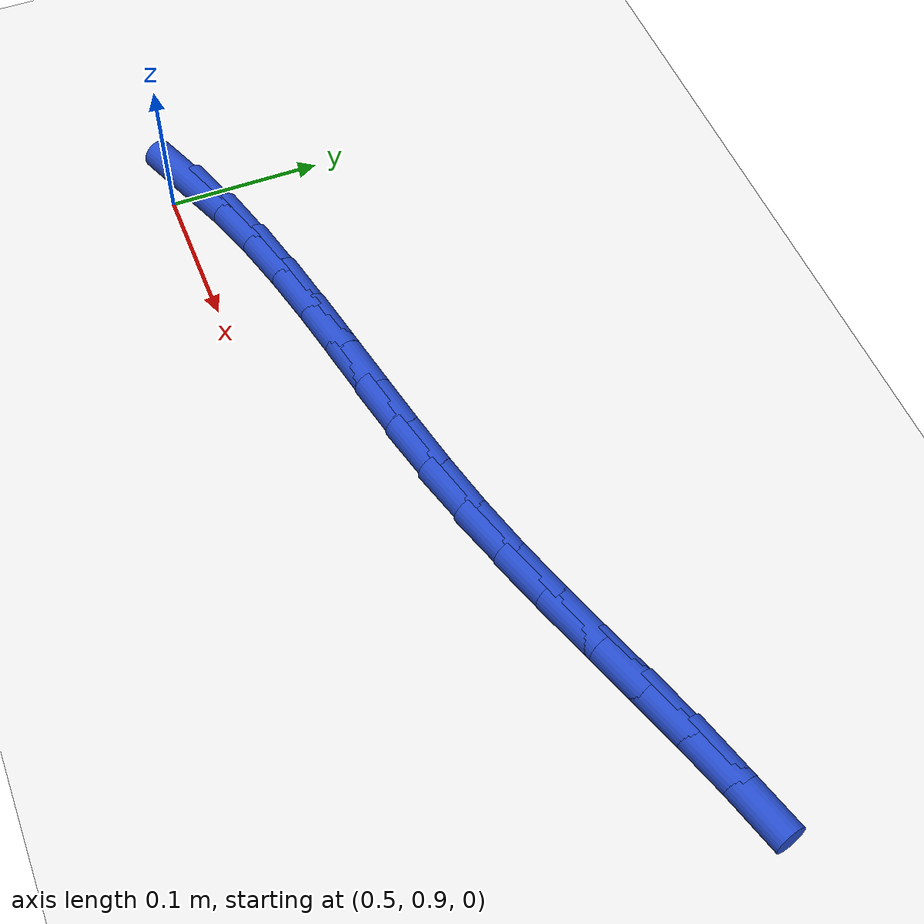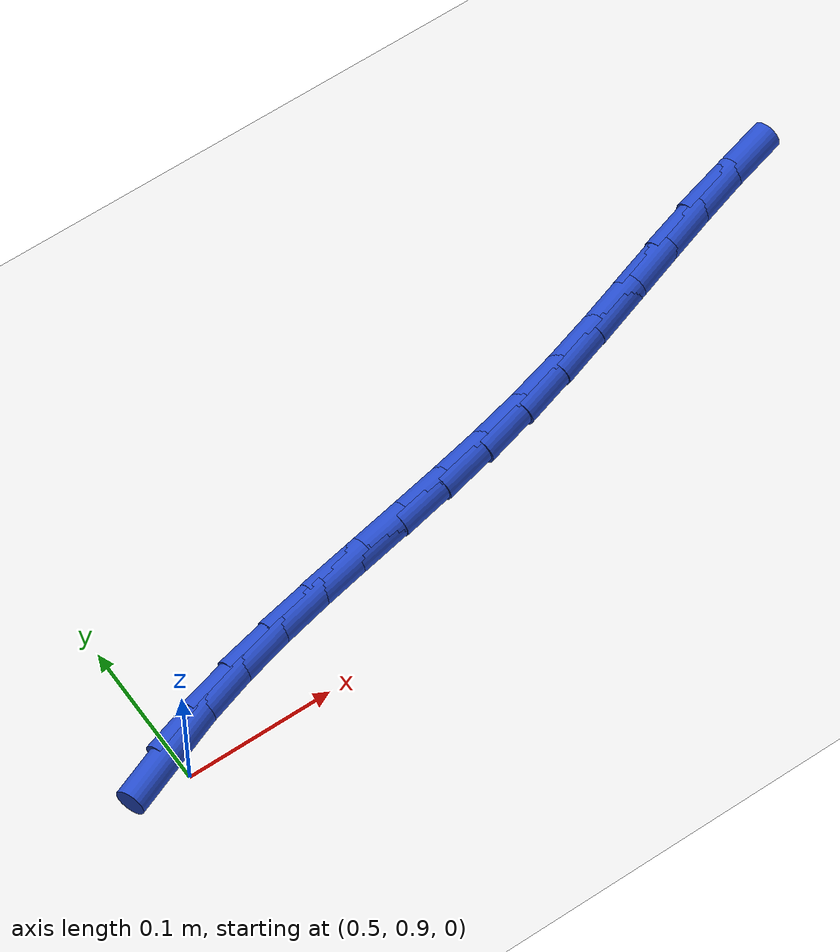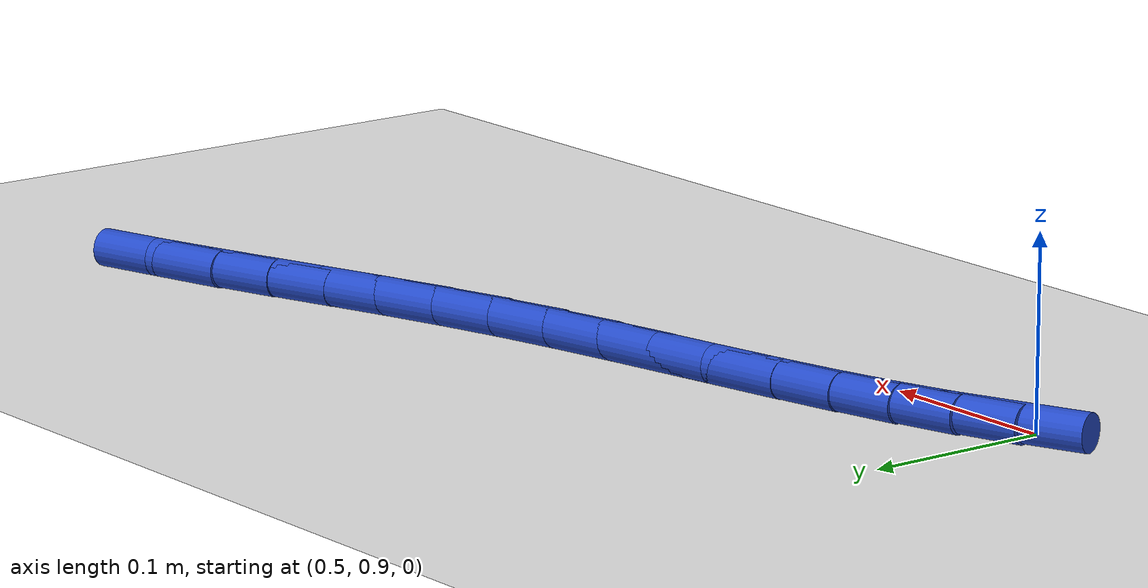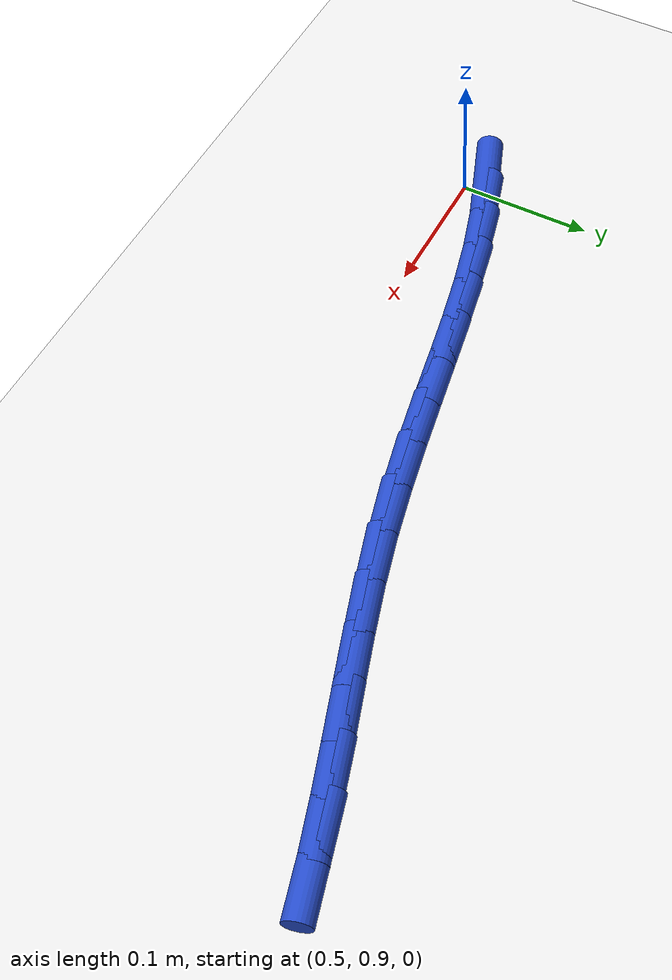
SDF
<sdf version="1.6">
 <world name="default">
  <model name="ground_plane">
   <static>1</static>
   <link name="link">
    <collision name="collision">
     <geometry><plane><normal>0 0 1</normal><size>100 100</size></plane></geometry>
     <surface><friction><ode><mu>100</mu><mu2>50</mu2></ode></friction></surface>
    </collision>
    <visual name="visual">
     <cast_shadows>0</cast_shadows>
     <geometry><plane><normal>0 0 1</normal><size>100 100</size></plane></geometry>
     <material>
      <script><uri>file://media/materials/scripts/gazebo.material</uri><name>Gazebo/WhiteGlow</name></script>
     </material>
    </visual>
   </link>
  </model>
  <model name="line">
   <link name="link_31">
    <pose>0.49699759059148263 0.9164086350615877 0.01 0 1.57 0.37583269068381064</pose>
    <collision name="collision">
     <geometry><cylinder><radius>0.01</radius><length>0.08</length></cylinder></geometry>
    </collision>
    <visual name="visual">
     <material>
      <script><name>Gazebo/Blue</name><uri>file://media/materials/scripts/gazebo.material</uri></script>
     </material>
     <geometry><cylinder><radius>0.01</radius><length>0.08</length></cylinder></geometry>
    </visual>
   </link>
   <link name="link_32">
    <pose>0.5281652861289297 0.9287070524343359 0.01 0 1.57 0.3086603809641968</pose>
    <collision name="collision">
     <geometry><cylinder><radius>0.01</radius><length>0.08</length></cylinder></geometry>
    </collision>
    <visual name="visual">
     <material>
      <script><name>Gazebo/Blue</name><uri>file://media/materials/scripts/gazebo.material</uri></script>
     </material>
     <geometry><cylinder><radius>0.01</radius><length>0.08</length></cylinder></geometry>
    </visual>
   </link>
   <link name="link_33">
    <pose>0.5605446227488382 0.9390312382637411 0.01 0 1.57 0.256827995575996</pose>
    <collision name="collision">
     <geometry><cylinder><radius>0.01</radius><length>0.08</length></cylinder></geometry>
    </collision>
    <visual name="visual">
     <material>
      <script><name>Gazebo/Blue</name><uri>file://media/materials/scripts/gazebo.material</uri></script>
     </material>
     <geometry><cylinder><radius>0.01</radius><length>0.08</length></cylinder></geometry>
    </visual>
   </link>
   <link name="link_34">
    <pose>0.5939394114623849 0.9478016419900197 0.01 0 1.57 0.21961429014175182</pose>
    <collision name="collision">
     <geometry><cylinder><radius>0.01</radius><length>0.08</length></cylinder></geometry>
    </collision>
    <visual name="visual">
     <material>
      <script><name>Gazebo/Blue</name><uri>file://media/materials/scripts/gazebo.material</uri></script>
     </material>
     <geometry><cylinder><radius>0.01</radius><length>0.08</length></cylinder></geometry>
    </visual>
   </link>
   <link name="link_35">
    <pose>0.6281534632807472 0.9554387130533899 0.01 0 1.57 0.19620188282423384</pose>
    <collision name="collision">
     <geometry><cylinder><radius>0.01</radius><length>0.08</length></cylinder></geometry>
    </collision>
    <visual name="visual">
     <material>
      <script><name>Gazebo/Blue</name><uri>file://media/materials/scripts/gazebo.material</uri></script>
     </material>
     <geometry><cylinder><radius>0.01</radius><length>0.08</length></cylinder></geometry>
    </visual>
   </link>
   <link name="link_36">
    <pose>0.6629905892151018 0.9623629008940683 0.01 0 1.57 0.18588898954116423</pose>
    <collision name="collision">
     <geometry><cylinder><radius>0.01</radius><length>0.08</length></cylinder></geometry>
    </collision>
    <visual name="visual">
     <material>
      <script><name>Gazebo/Blue</name><uri>file://media/materials/scripts/gazebo.material</uri></script>
     </material>
     <geometry><cylinder><radius>0.01</radius><length>0.08</length></cylinder></geometry>
    </visual>
   </link>
   <link name="link_37">
    <pose>0.698254600276626 0.9689946549522728 0.01 0 1.57 0.18819086844707827</pose>
    <collision name="collision">
     <geometry><cylinder><radius>0.01</radius><length>0.08</length></cylinder></geometry>
    </collision>
    <visual name="visual">
     <material>
      <script><name>Gazebo/Blue</name><uri>file://media/materials/scripts/gazebo.material</uri></script>
     </material>
     <geometry><cylinder><radius>0.01</radius><length>0.08</length></cylinder></geometry>
    </visual>
   </link>
   <link name="link_38">
    <pose>0.7337493074764967 0.9757544246682206 0.01 0 1.57 0.20286690918502082</pose>
    <collision name="collision">
     <geometry><cylinder><radius>0.01</radius><length>0.08</length></cylinder></geometry>
    </collision>
    <visual name="visual">
     <material>
      <script><name>Gazebo/Blue</name><uri>file://media/materials/scripts/gazebo.material</uri></script>
     </material>
     <geometry><cylinder><radius>0.01</radius><length>0.08</length></cylinder></geometry>
    </visual>
   </link>
   <link name="link_39">
    <pose>0.7692785218258913 0.9830626594821292 0.01 0 1.57 0.22989482461553473</pose>
    <collision name="collision">
     <geometry><cylinder><radius>0.01</radius><length>0.08</length></cylinder></geometry>
    </collision>
    <visual name="visual">
     <material>
      <script><name>Gazebo/Blue</name><uri>file://media/materials/scripts/gazebo.material</uri></script>
     </material>
     <geometry><cylinder><radius>0.01</radius><length>0.08</length></cylinder></geometry>
    </visual>
   </link>
   <link name="link_40">
    <pose>0.8046460543359863 0.9913398088342159 0.01 0 1.57 0.26764180865991144</pose>
    <collision name="collision">
     <geometry><cylinder><radius>0.01</radius><length>0.08</length></cylinder></geometry>
    </collision>
    <visual name="visual">
     <material>
      <script><name>Gazebo/Blue</name><uri>file://media/materials/scripts/gazebo.material</uri></script>
     </material>
     <geometry><cylinder><radius>0.01</radius><length>0.08</length></cylinder></geometry>
    </visual>
   </link>
   <link name="link_41">
    <pose>0.8396722784553271 1.0009447339837694 0.01 0 1.57 0.3007225226367122</pose>
    <collision name="collision">
     <geometry><cylinder><radius>0.01</radius><length>0.08</length></cylinder></geometry>
    </collision>
    <visual name="visual">
     <material>
      <script><name>Gazebo/Blue</name><uri>file://media/materials/scripts/gazebo.material</uri></script>
     </material>
     <geometry><cylinder><radius>0.01</radius><length>0.08</length></cylinder></geometry>
    </visual>
   </link>
   <link name="link_42">
    <pose>0.8743241426384506 1.011691250325863 0.01 0 1.57 0.3211499340487126</pose>
    <collision name="collision">
     <geometry><cylinder><radius>0.01</radius><length>0.08</length></cylinder></geometry>
    </collision>
    <visual name="visual">
     <material>
      <script><name>Gazebo/Blue</name><uri>file://media/materials/scripts/gazebo.material</uri></script>
     </material>
     <geometry><cylinder><radius>0.01</radius><length>0.08</length></cylinder></geometry>
    </visual>
   </link>
   <link name="link_43">
    <pose>0.9086451043059034 1.0231086711658965 0.01 0 1.57 0.328885016787121</pose>
    <collision name="collision">
     <geometry><cylinder><radius>0.01</radius><length>0.08</length></cylinder></geometry>
    </collision>
    <visual name="visual">
     <material>
      <script><name>Gazebo/Blue</name><uri>file://media/materials/scripts/gazebo.material</uri></script>
     </material>
     <geometry><cylinder><radius>0.01</radius><length>0.08</length></cylinder></geometry>
    </visual>
   </link>
   <link name="link_44">
    <pose>0.9426792848383097 1.034723840843351 0.01 0 1.57 0.3237713044182833</pose>
    <collision name="collision">
     <geometry><cylinder><radius>0.01</radius><length>0.08</length></cylinder></geometry>
    </collision>
    <visual name="visual">
     <material>
      <script><name>Gazebo/Blue</name><uri>file://media/materials/scripts/gazebo.material</uri></script>
     </material>
     <geometry><cylinder><radius>0.01</radius><length>0.08</length></cylinder></geometry>
    </visual>
   </link>
   <link name="link_45">
    <pose>0.9764708056162924 1.046063603697708 0.01 0 1.57 0.3054156611825449</pose>
    <collision name="collision">
     <geometry><cylinder><radius>0.01</radius><length>0.08</length></cylinder></geometry>
    </collision>
    <visual name="visual">
     <material>
      <script><name>Gazebo/Blue</name><uri>file://media/materials/scripts/gazebo.material</uri></script>
     </material>
     <geometry><cylinder><radius>0.01</radius><length>0.08</length></cylinder></geometry>
    </visual>
   </link>
   <link name="link_46">
    <pose>1.0100637880204768 1.0566548040684494 0.01 0 1.57 0.2731940479832857</pose>
    <collision name="collision">
     <geometry><cylinder><radius>0.01</radius><length>0.08</length></cylinder></geometry>
    </collision>
    <visual name="visual">
     <material>
      <script><name>Gazebo/Blue</name><uri>file://media/materials/scripts/gazebo.material</uri></script>
     </material>
     <geometry><cylinder><radius>0.01</radius><length>0.08</length></cylinder></geometry>
    </visual>
   </link>
  </model>
 </world>
</sdf>
